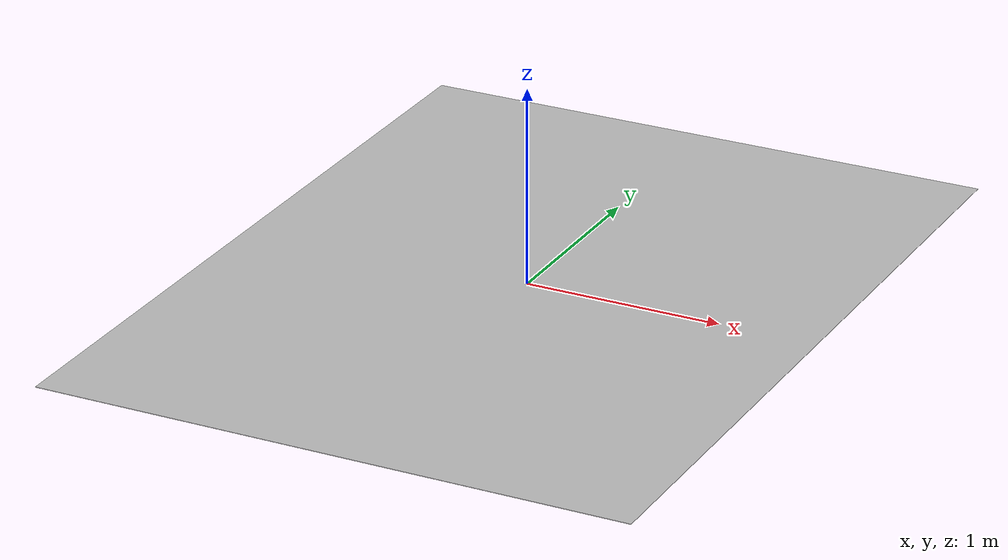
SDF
<?xml version="1.0"?>
<sdf version="1.4">
<model name="track_1">
<!-- ground plane cannot move, so object is static-->
  <static>true</static>
    <link name="link">
<!--the collision object of the custom ground plane-->
      <collision name="collision">
        <geometry>
          <plane>
            <normal>0 0 1</normal>
    	    <!--define the collision size of the custom ground plane-->
            <size>3 4</size>
          </plane>
        </geometry>
        <surface>
          <friction>
            <ode>
              <mu>100</mu>
              <mu2>50</mu2>
            </ode>
          </friction>
        </surface>
      </collision>
<!--the visual object of the custom ground plane-->
      <visual name="visual">
        <cast_shadows>false</cast_shadows>
        <geometry>
          <plane>
            <normal>0 0 1</normal>
	    <!--define the visual size of the custom ground plane-->
            <size>3 4</size>
          </plane>
        </geometry>
	<!--define the material which the custom ground plane consists of-->
        <material>
          <script>
            <uri>model://rosbot_simulation/models/track_1/materials/scripts</uri>
            <uri>model://rosbot_simulation/models/track_1/materials/textures</uri>
            <name>Track1/Image</name>
          </script>
        </material>
      </visual>
    </link>
  </model>
</sdf>
